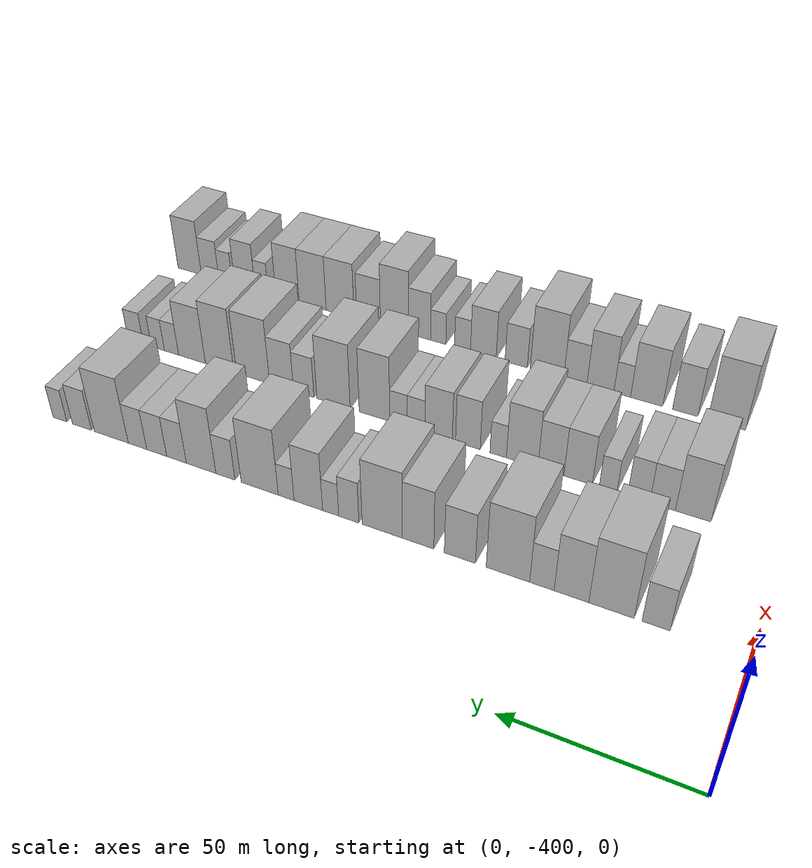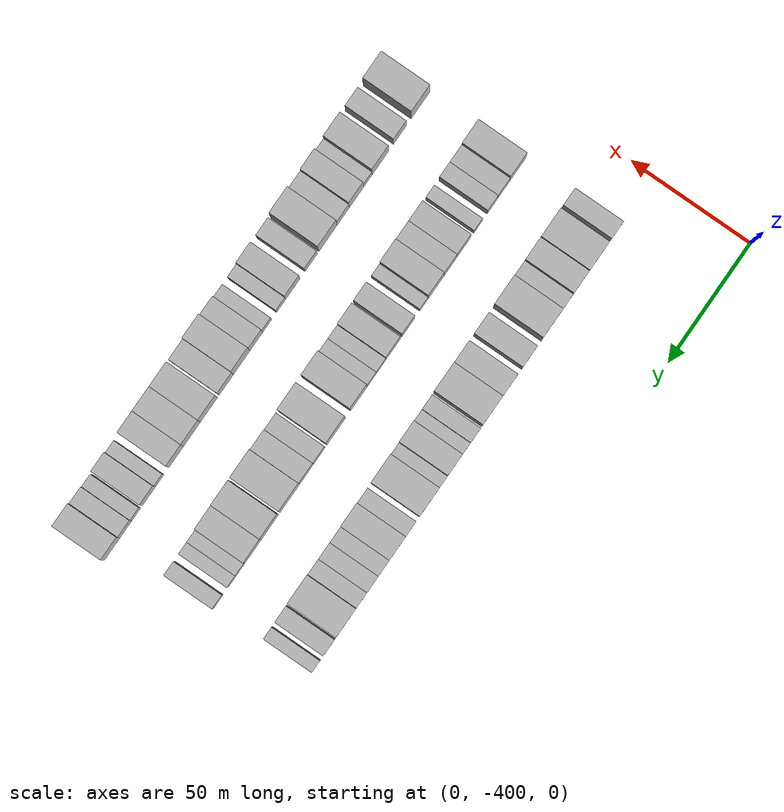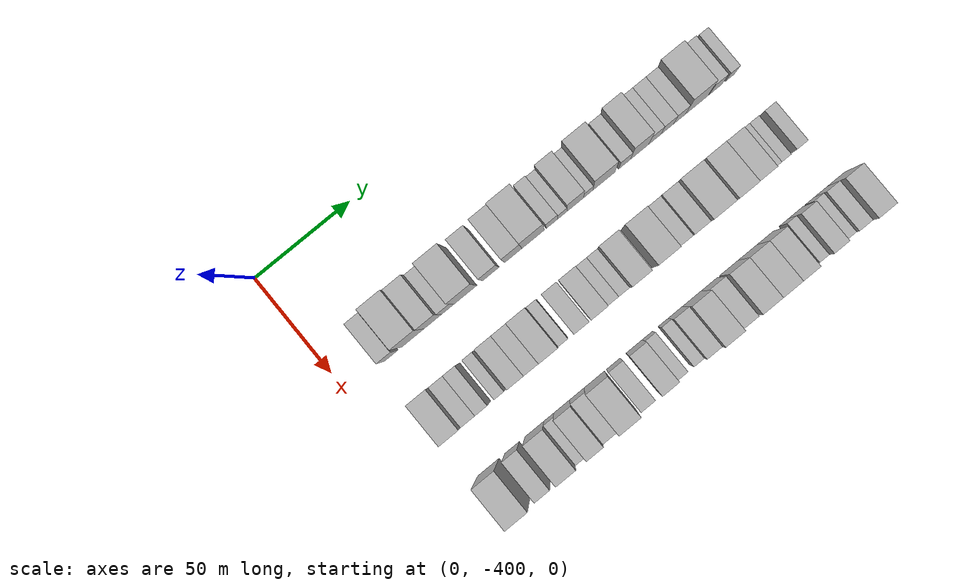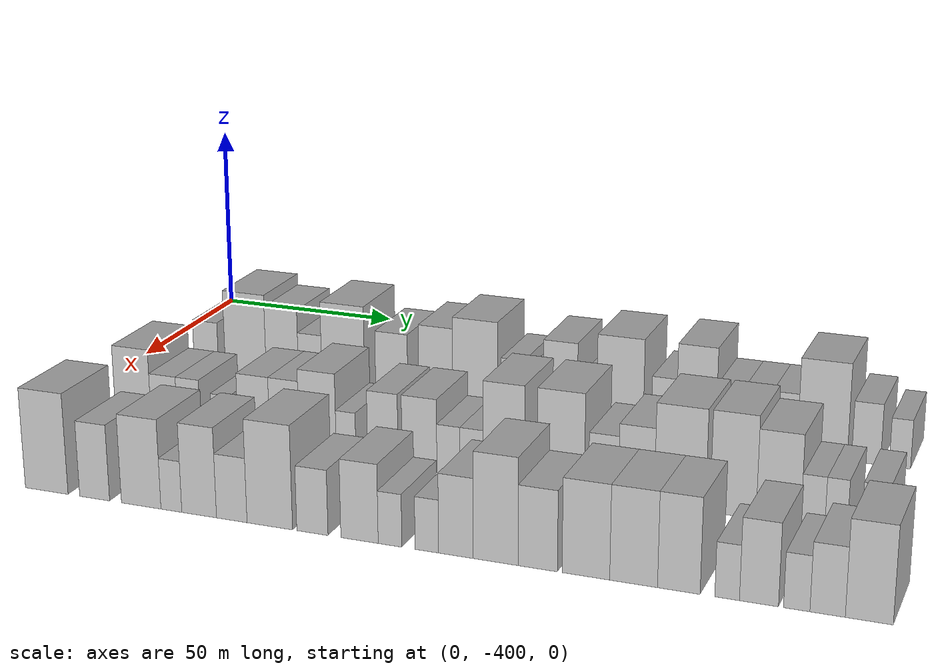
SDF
<sdf version="1.6">
 <world name="default">
  <model name="building_1">
   <static>1</static>
   <pose>50.0000 -376.4474 0 0.000000 0.000000 0.000000</pose>
   <link name="link">
    <pose>0 0 7.50 0 0 0</pose>
    <collision name="collision"><geometry><box><size>20.0000 7.1051 15.0000</size></box></geometry></collision>
    <visual name="visual">
     <cast_shadows>0</cast_shadows>
     <geometry><box><size>20.0000 7.1051 15.0000</size></box></geometry>
     <material>
      <script>
       <uri>model://HANNAS_wall/materials/scripts</uri>
       <uri>model://HANNAS_wall/materials/textures</uri>
       <name>vrc/HANNAS_wall</name>
      </script>
     </material>
    </visual>
   </link>
  </model>
  <model name="building_2">
   <static>1</static>
   <pose>50.0000 -365.0217 0 0.000000 0.000000 0.000000</pose>
   <link name="link">
    <pose>0 0 12.00 0 0 0</pose>
    <collision name="collision"><geometry><box><size>20.0000 11.7464 24.0000</size></box></geometry></collision>
    <visual name="visual">
     <cast_shadows>0</cast_shadows>
     <geometry><box><size>20.0000 11.7464 24.0000</size></box></geometry>
     <material>
      <script>
       <uri>model://HANNAS_wall/materials/scripts</uri>
       <uri>model://HANNAS_wall/materials/textures</uri>
       <name>vrc/HANNAS_wall</name>
      </script>
     </material>
    </visual>
   </link>
  </model>
  <model name="building_3">
   <static>1</static>
   <pose>50.0000 -354.5544 0 0.000000 0.000000 0.000000</pose>
   <link name="link">
    <pose>0 0 10.50 0 0 0</pose>
    <collision name="collision"><geometry><box><size>20.0000 9.1883 21.0000</size></box></geometry></collision>
    <visual name="visual">
     <cast_shadows>0</cast_shadows>
     <geometry><box><size>20.0000 9.1883 21.0000</size></box></geometry>
     <material>
      <script>
       <uri>model://HANNAS_wall/materials/scripts</uri>
       <uri>model://HANNAS_wall/materials/textures</uri>
       <name>vrc/HANNAS_wall</name>
      </script>
     </material>
    </visual>
   </link>
  </model>
  <model name="building_4">
   <static>1</static>
   <pose>50.0000 -346.6746 0 0.000000 0.000000 0.000000</pose>
   <link name="link">
    <pose>0 0 7.50 0 0 0</pose>
    <collision name="collision"><geometry><box><size>20.0000 6.5711 15.0000</size></box></geometry></collision>
    <visual name="visual">
     <cast_shadows>0</cast_shadows>
     <geometry><box><size>20.0000 6.5711 15.0000</size></box></geometry>
     <material>
      <script>
       <uri>model://HANNAS_wall/materials/scripts</uri>
       <uri>model://HANNAS_wall/materials/textures</uri>
       <name>vrc/HANNAS_wall</name>
      </script>
     </material>
    </visual>
   </link>
  </model>
  <model name="building_5">
   <static>1</static>
   <pose>50.0000 -337.4279 0 0.000000 0.000000 0.000000</pose>
   <link name="link">
    <pose>0 0 12.00 0 0 0</pose>
    <collision name="collision"><geometry><box><size>20.0000 11.9223 24.0000</size></box></geometry></collision>
    <visual name="visual">
     <cast_shadows>0</cast_shadows>
     <geometry><box><size>20.0000 11.9223 24.0000</size></box></geometry>
     <material>
      <script>
       <uri>model://HANNAS_wall/materials/scripts</uri>
       <uri>model://HANNAS_wall/materials/textures</uri>
       <name>vrc/HANNAS_wall</name>
      </script>
     </material>
    </visual>
   </link>
  </model>
  <model name="building_6">
   <static>1</static>
   <pose>50.0000 -324.0828 0 0.000000 0.000000 0.000000</pose>
   <link name="link">
    <pose>0 0 9.00 0 0 0</pose>
    <collision name="collision"><geometry><box><size>20.0000 8.7679 18.0000</size></box></geometry></collision>
    <visual name="visual">
     <cast_shadows>0</cast_shadows>
     <geometry><box><size>20.0000 8.7679 18.0000</size></box></geometry>
     <material>
      <script>
       <uri>model://HANNAS_wall/materials/scripts</uri>
       <uri>model://HANNAS_wall/materials/textures</uri>
       <name>vrc/HANNAS_wall</name>
      </script>
     </material>
    </visual>
   </link>
  </model>
  <model name="building_7">
   <static>1</static>
   <pose>50.0000 -312.1704 0 0.000000 0.000000 0.000000</pose>
   <link name="link">
    <pose>0 0 10.50 0 0 0</pose>
    <collision name="collision"><geometry><box><size>20.0000 9.0568 21.0000</size></box></geometry></collision>
    <visual name="visual">
     <cast_shadows>0</cast_shadows>
     <geometry><box><size>20.0000 9.0568 21.0000</size></box></geometry>
     <material>
      <script>
       <uri>model://HANNAS_wall/materials/scripts</uri>
       <uri>model://HANNAS_wall/materials/textures</uri>
       <name>vrc/HANNAS_wall</name>
      </script>
     </material>
    </visual>
   </link>
  </model>
  <model name="building_8">
   <static>1</static>
   <pose>50.0000 -301.7070 0 0.000000 0.000000 0.000000</pose>
   <link name="link">
    <pose>0 0 12.00 0 0 0</pose>
    <collision name="collision"><geometry><box><size>20.0000 11.8700 24.0000</size></box></geometry></collision>
    <visual name="visual">
     <cast_shadows>0</cast_shadows>
     <geometry><box><size>20.0000 11.8700 24.0000</size></box></geometry>
     <material>
      <script>
       <uri>model://HANNAS_wall/materials/scripts</uri>
       <uri>model://HANNAS_wall/materials/textures</uri>
       <name>vrc/HANNAS_wall</name>
      </script>
     </material>
    </visual>
   </link>
  </model>
  <model name="building_9">
   <static>1</static>
   <pose>50.0000 -291.7434 0 0.000000 0.000000 0.000000</pose>
   <link name="link">
    <pose>0 0 7.50 0 0 0</pose>
    <collision name="collision"><geometry><box><size>20.0000 6.0571 15.0000</size></box></geometry></collision>
    <visual name="visual">
     <cast_shadows>0</cast_shadows>
     <geometry><box><size>20.0000 6.0571 15.0000</size></box></geometry>
     <material>
      <script>
       <uri>model://HANNAS_wall/materials/scripts</uri>
       <uri>model://HANNAS_wall/materials/textures</uri>
       <name>vrc/HANNAS_wall</name>
      </script>
     </material>
    </visual>
   </link>
  </model>
  <model name="building_10">
   <static>1</static>
   <pose>50.0000 -286.2814 0 0.000000 0.000000 0.000000</pose>
   <link name="link">
    <pose>0 0 6.00 0 0 0</pose>
    <collision name="collision"><geometry><box><size>20.0000 4.8668 12.0000</size></box></geometry></collision>
    <visual name="visual">
     <cast_shadows>0</cast_shadows>
     <geometry><box><size>20.0000 4.8668 12.0000</size></box></geometry>
     <material>
      <script>
       <uri>model://HANNAS_wall/materials/scripts</uri>
       <uri>model://HANNAS_wall/materials/textures</uri>
       <name>vrc/HANNAS_wall</name>
      </script>
     </material>
    </visual>
   </link>
  </model>
  <model name="building_11">
   <static>1</static>
   <pose>50.0000 -279.4507 0 0.000000 0.000000 0.000000</pose>
   <link name="link">
    <pose>0 0 10.50 0 0 0</pose>
    <collision name="collision"><geometry><box><size>20.0000 8.7948 21.0000</size></box></geometry></collision>
    <visual name="visual">
     <cast_shadows>0</cast_shadows>
     <geometry><box><size>20.0000 8.7948 21.0000</size></box></geometry>
     <material>
      <script>
       <uri>model://HANNAS_wall/materials/scripts</uri>
       <uri>model://HANNAS_wall/materials/textures</uri>
       <name>vrc/HANNAS_wall</name>
      </script>
     </material>
    </visual>
   </link>
  </model>
  <model name="building_12">
   <static>1</static>
   <pose>50.0000 -272.5724 0 0.000000 0.000000 0.000000</pose>
   <link name="link">
    <pose>0 0 6.00 0 0 0</pose>
    <collision name="collision"><geometry><box><size>20.0000 4.9618 12.0000</size></box></geometry></collision>
    <visual name="visual">
     <cast_shadows>0</cast_shadows>
     <geometry><box><size>20.0000 4.9618 12.0000</size></box></geometry>
     <material>
      <script>
       <uri>model://HANNAS_wall/materials/scripts</uri>
       <uri>model://HANNAS_wall/materials/textures</uri>
       <name>vrc/HANNAS_wall</name>
      </script>
     </material>
    </visual>
   </link>
  </model>
  <model name="building_13">
   <static>1</static>
   <pose>50.0000 -264.2122 0 0.000000 0.000000 0.000000</pose>
   <link name="link">
    <pose>0 0 12.00 0 0 0</pose>
    <collision name="collision"><geometry><box><size>20.0000 11.7585 24.0000</size></box></geometry></collision>
    <visual name="visual">
     <cast_shadows>0</cast_shadows>
     <geometry><box><size>20.0000 11.7585 24.0000</size></box></geometry>
     <material>
      <script>
       <uri>model://HANNAS_wall/materials/scripts</uri>
       <uri>model://HANNAS_wall/materials/textures</uri>
       <name>vrc/HANNAS_wall</name>
      </script>
     </material>
    </visual>
   </link>
  </model>
  <model name="building_14">
   <static>1</static>
   <pose>50.0000 -253.2306 0 0.000000 0.000000 0.000000</pose>
   <link name="link">
    <pose>0 0 7.50 0 0 0</pose>
    <collision name="collision"><geometry><box><size>20.0000 6.2049 15.0000</size></box></geometry></collision>
    <visual name="visual">
     <cast_shadows>0</cast_shadows>
     <geometry><box><size>20.0000 6.2049 15.0000</size></box></geometry>
     <material>
      <script>
       <uri>model://HANNAS_wall/materials/scripts</uri>
       <uri>model://HANNAS_wall/materials/textures</uri>
       <name>vrc/HANNAS_wall</name>
      </script>
     </material>
    </visual>
   </link>
  </model>
  <model name="building_15">
   <static>1</static>
   <pose>50.0000 -245.2657 0 0.000000 0.000000 0.000000</pose>
   <link name="link">
    <pose>0 0 12.00 0 0 0</pose>
    <collision name="collision"><geometry><box><size>20.0000 9.7249 24.0000</size></box></geometry></collision>
    <visual name="visual">
     <cast_shadows>0</cast_shadows>
     <geometry><box><size>20.0000 9.7249 24.0000</size></box></geometry>
     <material>
      <script>
       <uri>model://HANNAS_wall/materials/scripts</uri>
       <uri>model://HANNAS_wall/materials/textures</uri>
       <name>vrc/HANNAS_wall</name>
      </script>
     </material>
    </visual>
   </link>
  </model>
  <model name="building_16">
   <static>1</static>
   <pose>50.0000 -237.1206 0 0.000000 0.000000 0.000000</pose>
   <link name="link">
    <pose>0 0 7.50 0 0 0</pose>
    <collision name="collision"><geometry><box><size>20.0000 6.5652 15.0000</size></box></geometry></collision>
    <visual name="visual">
     <cast_shadows>0</cast_shadows>
     <geometry><box><size>20.0000 6.5652 15.0000</size></box></geometry>
     <material>
      <script>
       <uri>model://HANNAS_wall/materials/scripts</uri>
       <uri>model://HANNAS_wall/materials/textures</uri>
       <name>vrc/HANNAS_wall</name>
      </script>
     </material>
    </visual>
   </link>
  </model>
  <model name="building_17">
   <static>1</static>
   <pose>50.0000 -230.4647 0 0.000000 0.000000 0.000000</pose>
   <link name="link">
    <pose>0 0 7.50 0 0 0</pose>
    <collision name="collision"><geometry><box><size>20.0000 6.7467 15.0000</size></box></geometry></collision>
    <visual name="visual">
     <cast_shadows>0</cast_shadows>
     <geometry><box><size>20.0000 6.7467 15.0000</size></box></geometry>
     <material>
      <script>
       <uri>model://HANNAS_wall/materials/scripts</uri>
       <uri>model://HANNAS_wall/materials/textures</uri>
       <name>vrc/HANNAS_wall</name>
      </script>
     </material>
    </visual>
   </link>
  </model>
  <model name="building_18">
   <static>1</static>
   <pose>50.0000 -223.9192 0 0.000000 0.000000 0.000000</pose>
   <link name="link">
    <pose>0 0 7.50 0 0 0</pose>
    <collision name="collision"><geometry><box><size>20.0000 6.3443 15.0000</size></box></geometry></collision>
    <visual name="visual">
     <cast_shadows>0</cast_shadows>
     <geometry><box><size>20.0000 6.3443 15.0000</size></box></geometry>
     <material>
      <script>
       <uri>model://HANNAS_wall/materials/scripts</uri>
       <uri>model://HANNAS_wall/materials/textures</uri>
       <name>vrc/HANNAS_wall</name>
      </script>
     </material>
    </visual>
   </link>
  </model>
  <model name="building_19">
   <static>1</static>
   <pose>50.0000 -214.8182 0 0.000000 0.000000 0.000000</pose>
   <link name="link">
    <pose>0 0 12.00 0 0 0</pose>
    <collision name="collision"><geometry><box><size>20.0000 11.8577 24.0000</size></box></geometry></collision>
    <visual name="visual">
     <cast_shadows>0</cast_shadows>
     <geometry><box><size>20.0000 11.8577 24.0000</size></box></geometry>
     <material>
      <script>
       <uri>model://HANNAS_wall/materials/scripts</uri>
       <uri>model://HANNAS_wall/materials/textures</uri>
       <name>vrc/HANNAS_wall</name>
      </script>
     </material>
    </visual>
   </link>
  </model>
  <model name="building_20">
   <static>1</static>
   <pose>50.0000 -204.5173 0 0.000000 0.000000 0.000000</pose>
   <link name="link">
    <pose>0 0 7.50 0 0 0</pose>
    <collision name="collision"><geometry><box><size>20.0000 6.7441 15.0000</size></box></geometry></collision>
    <visual name="visual">
     <cast_shadows>0</cast_shadows>
     <geometry><box><size>20.0000 6.7441 15.0000</size></box></geometry>
     <material>
      <script>
       <uri>model://HANNAS_wall/materials/scripts</uri>
       <uri>model://HANNAS_wall/materials/textures</uri>
       <name>vrc/HANNAS_wall</name>
      </script>
     </material>
    </visual>
   </link>
  </model>
  <model name="building_21">
   <static>1</static>
   <pose>50.0000 -196.6896 0 0.000000 0.000000 0.000000</pose>
   <link name="link">
    <pose>0 0 6.00 0 0 0</pose>
    <collision name="collision"><geometry><box><size>20.0000 4.9112 12.0000</size></box></geometry></collision>
    <visual name="visual">
     <cast_shadows>0</cast_shadows>
     <geometry><box><size>20.0000 4.9112 12.0000</size></box></geometry>
     <material>
      <script>
       <uri>model://HANNAS_wall/materials/scripts</uri>
       <uri>model://HANNAS_wall/materials/textures</uri>
       <name>vrc/HANNAS_wall</name>
      </script>
     </material>
    </visual>
   </link>
  </model>
  <model name="building_87">
   <static>1</static>
   <pose>90.0000 -375.1114 0 0.000000 0.000000 0.000000</pose>
   <link name="link">
    <pose>0 0 10.50 0 0 0</pose>
    <collision name="collision"><geometry><box><size>20.0000 9.7771 21.0000</size></box></geometry></collision>
    <visual name="visual">
     <cast_shadows>0</cast_shadows>
     <geometry><box><size>20.0000 9.7771 21.0000</size></box></geometry>
     <material>
      <script>
       <uri>model://HANNAS_wall/materials/scripts</uri>
       <uri>model://HANNAS_wall/materials/textures</uri>
       <name>vrc/HANNAS_wall</name>
      </script>
     </material>
    </visual>
   </link>
  </model>
  <model name="building_88">
   <static>1</static>
   <pose>90.0000 -366.6486 0 0.000000 0.000000 0.000000</pose>
   <link name="link">
    <pose>0 0 7.50 0 0 0</pose>
    <collision name="collision"><geometry><box><size>20.0000 7.1486 15.0000</size></box></geometry></collision>
    <visual name="visual">
     <cast_shadows>0</cast_shadows>
     <geometry><box><size>20.0000 7.1486 15.0000</size></box></geometry>
     <material>
      <script>
       <uri>model://HANNAS_wall/materials/scripts</uri>
       <uri>model://HANNAS_wall/materials/textures</uri>
       <name>vrc/HANNAS_wall</name>
      </script>
     </material>
    </visual>
   </link>
  </model>
  <model name="building_89">
   <static>1</static>
   <pose>90.0000 -359.9589 0 0.000000 0.000000 0.000000</pose>
   <link name="link">
    <pose>0 0 7.50 0 0 0</pose>
    <collision name="collision"><geometry><box><size>20.0000 6.2308 15.0000</size></box></geometry></collision>
    <visual name="visual">
     <cast_shadows>0</cast_shadows>
     <geometry><box><size>20.0000 6.2308 15.0000</size></box></geometry>
     <material>
      <script>
       <uri>model://HANNAS_wall/materials/scripts</uri>
       <uri>model://HANNAS_wall/materials/textures</uri>
       <name>vrc/HANNAS_wall</name>
      </script>
     </material>
    </visual>
   </link>
  </model>
  <model name="building_90">
   <static>1</static>
   <pose>90.0000 -351.3036 0 0.000000 0.000000 0.000000</pose>
   <link name="link">
    <pose>0 0 6.00 0 0 0</pose>
    <collision name="collision"><geometry><box><size>20.0000 5.0797 12.0000</size></box></geometry></collision>
    <visual name="visual">
     <cast_shadows>0</cast_shadows>
     <geometry><box><size>20.0000 5.0797 12.0000</size></box></geometry>
     <material>
      <script>
       <uri>model://HANNAS_wall/materials/scripts</uri>
       <uri>model://HANNAS_wall/materials/textures</uri>
       <name>vrc/HANNAS_wall</name>
      </script>
     </material>
    </visual>
   </link>
  </model>
  <model name="building_91">
   <static>1</static>
   <pose>90.0000 -342.6138 0 0.000000 0.000000 0.000000</pose>
   <link name="link">
    <pose>0 0 9.00 0 0 0</pose>
    <collision name="collision"><geometry><box><size>20.0000 8.2998 18.0000</size></box></geometry></collision>
    <visual name="visual">
     <cast_shadows>0</cast_shadows>
     <geometry><box><size>20.0000 8.2998 18.0000</size></box></geometry>
     <material>
      <script>
       <uri>model://HANNAS_wall/materials/scripts</uri>
       <uri>model://HANNAS_wall/materials/textures</uri>
       <name>vrc/HANNAS_wall</name>
      </script>
     </material>
    </visual>
   </link>
  </model>
  <model name="building_92">
   <static>1</static>
   <pose>90.0000 -334.6281 0 0.000000 0.000000 0.000000</pose>
   <link name="link">
    <pose>0 0 9.00 0 0 0</pose>
    <collision name="collision"><geometry><box><size>20.0000 7.6716 18.0000</size></box></geometry></collision>
    <visual name="visual">
     <cast_shadows>0</cast_shadows>
     <geometry><box><size>20.0000 7.6716 18.0000</size></box></geometry>
     <material>
      <script>
       <uri>model://HANNAS_wall/materials/scripts</uri>
       <uri>model://HANNAS_wall/materials/textures</uri>
       <name>vrc/HANNAS_wall</name>
      </script>
     </material>
    </visual>
   </link>
  </model>
  <model name="building_93">
   <static>1</static>
   <pose>90.0000 -326.0307 0 0.000000 0.000000 0.000000</pose>
   <link name="link">
    <pose>0 0 10.50 0 0 0</pose>
    <collision name="collision"><geometry><box><size>20.0000 9.5232 21.0000</size></box></geometry></collision>
    <visual name="visual">
     <cast_shadows>0</cast_shadows>
     <geometry><box><size>20.0000 9.5232 21.0000</size></box></geometry>
     <material>
      <script>
       <uri>model://HANNAS_wall/materials/scripts</uri>
       <uri>model://HANNAS_wall/materials/textures</uri>
       <name>vrc/HANNAS_wall</name>
      </script>
     </material>
    </visual>
   </link>
  </model>
  <model name="building_94">
   <static>1</static>
   <pose>90.0000 -318.7704 0 0.000000 0.000000 0.000000</pose>
   <link name="link">
    <pose>0 0 6.00 0 0 0</pose>
    <collision name="collision"><geometry><box><size>20.0000 4.9974 12.0000</size></box></geometry></collision>
    <visual name="visual">
     <cast_shadows>0</cast_shadows>
     <geometry><box><size>20.0000 4.9974 12.0000</size></box></geometry>
     <material>
      <script>
       <uri>model://HANNAS_wall/materials/scripts</uri>
       <uri>model://HANNAS_wall/materials/textures</uri>
       <name>vrc/HANNAS_wall</name>
      </script>
     </material>
    </visual>
   </link>
  </model>
  <model name="building_95">
   <static>1</static>
   <pose>90.0000 -309.4488 0 0.000000 0.000000 0.000000</pose>
   <link name="link">
    <pose>0 0 9.00 0 0 0</pose>
    <collision name="collision"><geometry><box><size>20.0000 7.6457 18.0000</size></box></geometry></collision>
    <visual name="visual">
     <cast_shadows>0</cast_shadows>
     <geometry><box><size>20.0000 7.6457 18.0000</size></box></geometry>
     <material>
      <script>
       <uri>model://HANNAS_wall/materials/scripts</uri>
       <uri>model://HANNAS_wall/materials/textures</uri>
       <name>vrc/HANNAS_wall</name>
      </script>
     </material>
    </visual>
   </link>
  </model>
  <model name="building_96">
   <static>1</static>
   <pose>90.0000 -300.3069 0 0.000000 0.000000 0.000000</pose>
   <link name="link">
    <pose>0 0 9.00 0 0 0</pose>
    <collision name="collision"><geometry><box><size>20.0000 8.6380 18.0000</size></box></geometry></collision>
    <visual name="visual">
     <cast_shadows>0</cast_shadows>
     <geometry><box><size>20.0000 8.6380 18.0000</size></box></geometry>
     <material>
      <script>
       <uri>model://HANNAS_wall/materials/scripts</uri>
       <uri>model://HANNAS_wall/materials/textures</uri>
       <name>vrc/HANNAS_wall</name>
      </script>
     </material>
    </visual>
   </link>
  </model>
  <model name="building_97">
   <static>1</static>
   <pose>90.0000 -293.1363 0 0.000000 0.000000 0.000000</pose>
   <link name="link">
    <pose>0 0 6.00 0 0 0</pose>
    <collision name="collision"><geometry><box><size>20.0000 5.7032 12.0000</size></box></geometry></collision>
    <visual name="visual">
     <cast_shadows>0</cast_shadows>
     <geometry><box><size>20.0000 5.7032 12.0000</size></box></geometry>
     <material>
      <script>
       <uri>model://HANNAS_wall/materials/scripts</uri>
       <uri>model://HANNAS_wall/materials/textures</uri>
       <name>vrc/HANNAS_wall</name>
      </script>
     </material>
    </visual>
   </link>
  </model>
  <model name="building_98">
   <static>1</static>
   <pose>90.0000 -287.4939 0 0.000000 0.000000 0.000000</pose>
   <link name="link">
    <pose>0 0 6.00 0 0 0</pose>
    <collision name="collision"><geometry><box><size>20.0000 5.5816 12.0000</size></box></geometry></collision>
    <visual name="visual">
     <cast_shadows>0</cast_shadows>
     <geometry><box><size>20.0000 5.5816 12.0000</size></box></geometry>
     <material>
      <script>
       <uri>model://HANNAS_wall/materials/scripts</uri>
       <uri>model://HANNAS_wall/materials/textures</uri>
       <name>vrc/HANNAS_wall</name>
      </script>
     </material>
    </visual>
   </link>
  </model>
  <model name="building_99">
   <static>1</static>
   <pose>90.0000 -279.7035 0 0.000000 0.000000 0.000000</pose>
   <link name="link">
    <pose>0 0 12.00 0 0 0</pose>
    <collision name="collision"><geometry><box><size>20.0000 9.9992 24.0000</size></box></geometry></collision>
    <visual name="visual">
     <cast_shadows>0</cast_shadows>
     <geometry><box><size>20.0000 9.9992 24.0000</size></box></geometry>
     <material>
      <script>
       <uri>model://HANNAS_wall/materials/scripts</uri>
       <uri>model://HANNAS_wall/materials/textures</uri>
       <name>vrc/HANNAS_wall</name>
      </script>
     </material>
    </visual>
   </link>
  </model>
  <model name="building_100">
   <static>1</static>
   <pose>90.0000 -266.1162 0 0.000000 0.000000 0.000000</pose>
   <link name="link">
    <pose>0 0 12.00 0 0 0</pose>
    <collision name="collision"><geometry><box><size>20.0000 11.1755 24.0000</size></box></geometry></collision>
    <visual name="visual">
     <cast_shadows>0</cast_shadows>
     <geometry><box><size>20.0000 11.1755 24.0000</size></box></geometry>
     <material>
      <script>
       <uri>model://HANNAS_wall/materials/scripts</uri>
       <uri>model://HANNAS_wall/materials/textures</uri>
       <name>vrc/HANNAS_wall</name>
      </script>
     </material>
    </visual>
   </link>
  </model>
  <model name="building_101">
   <static>1</static>
   <pose>90.0000 -256.0460 0 0.000000 0.000000 0.000000</pose>
   <link name="link">
    <pose>0 0 7.50 0 0 0</pose>
    <collision name="collision"><geometry><box><size>20.0000 6.9647 15.0000</size></box></geometry></collision>
    <visual name="visual">
     <cast_shadows>0</cast_shadows>
     <geometry><box><size>20.0000 6.9647 15.0000</size></box></geometry>
     <material>
      <script>
       <uri>model://HANNAS_wall/materials/scripts</uri>
       <uri>model://HANNAS_wall/materials/textures</uri>
       <name>vrc/HANNAS_wall</name>
      </script>
     </material>
    </visual>
   </link>
  </model>
  <model name="building_102">
   <static>1</static>
   <pose>90.0000 -248.4318 0 0.000000 0.000000 0.000000</pose>
   <link name="link">
    <pose>0 0 9.00 0 0 0</pose>
    <collision name="collision"><geometry><box><size>20.0000 8.2637 18.0000</size></box></geometry></collision>
    <visual name="visual">
     <cast_shadows>0</cast_shadows>
     <geometry><box><size>20.0000 8.2637 18.0000</size></box></geometry>
     <material>
      <script>
       <uri>model://HANNAS_wall/materials/scripts</uri>
       <uri>model://HANNAS_wall/materials/textures</uri>
       <name>vrc/HANNAS_wall</name>
      </script>
     </material>
    </visual>
   </link>
  </model>
  <model name="building_103">
   <static>1</static>
   <pose>90.0000 -238.4825 0 0.000000 0.000000 0.000000</pose>
   <link name="link">
    <pose>0 0 12.00 0 0 0</pose>
    <collision name="collision"><geometry><box><size>20.0000 11.6350 24.0000</size></box></geometry></collision>
    <visual name="visual">
     <cast_shadows>0</cast_shadows>
     <geometry><box><size>20.0000 11.6350 24.0000</size></box></geometry>
     <material>
      <script>
       <uri>model://HANNAS_wall/materials/scripts</uri>
       <uri>model://HANNAS_wall/materials/textures</uri>
       <name>vrc/HANNAS_wall</name>
      </script>
     </material>
    </visual>
   </link>
  </model>
  <model name="building_104">
   <static>1</static>
   <pose>90.0000 -226.5242 0 0.000000 0.000000 0.000000</pose>
   <link name="link">
    <pose>0 0 12.00 0 0 0</pose>
    <collision name="collision"><geometry><box><size>20.0000 10.2817 24.0000</size></box></geometry></collision>
    <visual name="visual">
     <cast_shadows>0</cast_shadows>
     <geometry><box><size>20.0000 10.2817 24.0000</size></box></geometry>
     <material>
      <script>
       <uri>model://HANNAS_wall/materials/scripts</uri>
       <uri>model://HANNAS_wall/materials/textures</uri>
       <name>vrc/HANNAS_wall</name>
      </script>
     </material>
    </visual>
   </link>
  </model>
  <model name="building_105">
   <static>1</static>
   <pose>90.0000 -216.4870 0 0.000000 0.000000 0.000000</pose>
   <link name="link">
    <pose>0 0 10.50 0 0 0</pose>
    <collision name="collision"><geometry><box><size>20.0000 9.7926 21.0000</size></box></geometry></collision>
    <visual name="visual">
     <cast_shadows>0</cast_shadows>
     <geometry><box><size>20.0000 9.7926 21.0000</size></box></geometry>
     <material>
      <script>
       <uri>model://HANNAS_wall/materials/scripts</uri>
       <uri>model://HANNAS_wall/materials/textures</uri>
       <name>vrc/HANNAS_wall</name>
      </script>
     </material>
    </visual>
   </link>
  </model>
  <model name="building_106">
   <static>1</static>
   <pose>90.0000 -208.9618 0 0.000000 0.000000 0.000000</pose>
   <link name="link">
    <pose>0 0 6.00 0 0 0</pose>
    <collision name="collision"><geometry><box><size>20.0000 5.2579 12.0000</size></box></geometry></collision>
    <visual name="visual">
     <cast_shadows>0</cast_shadows>
     <geometry><box><size>20.0000 5.2579 12.0000</size></box></geometry>
     <material>
      <script>
       <uri>model://HANNAS_wall/materials/scripts</uri>
       <uri>model://HANNAS_wall/materials/textures</uri>
       <name>vrc/HANNAS_wall</name>
      </script>
     </material>
    </visual>
   </link>
  </model>
  <model name="building_107">
   <static>1</static>
   <pose>90.0000 -203.9033 0 0.000000 0.000000 0.000000</pose>
   <link name="link">
    <pose>0 0 6.00 0 0 0</pose>
    <collision name="collision"><geometry><box><size>20.0000 4.8590 12.0000</size></box></geometry></collision>
    <visual name="visual">
     <cast_shadows>0</cast_shadows>
     <geometry><box><size>20.0000 4.8590 12.0000</size></box></geometry>
     <material>
      <script>
       <uri>model://HANNAS_wall/materials/scripts</uri>
       <uri>model://HANNAS_wall/materials/textures</uri>
       <name>vrc/HANNAS_wall</name>
      </script>
     </material>
    </visual>
   </link>
  </model>
  <model name="building_108">
   <static>1</static>
   <pose>90.0000 -195.5802 0 0.000000 0.000000 0.000000</pose>
   <link name="link">
    <pose>0 0 6.00 0 0 0</pose>
    <collision name="collision"><geometry><box><size>20.0000 5.7873 12.0000</size></box></geometry></collision>
    <visual name="visual">
     <cast_shadows>0</cast_shadows>
     <geometry><box><size>20.0000 5.7873 12.0000</size></box></geometry>
     <material>
      <script>
       <uri>model://HANNAS_wall/materials/scripts</uri>
       <uri>model://HANNAS_wall/materials/textures</uri>
       <name>vrc/HANNAS_wall</name>
      </script>
     </material>
    </visual>
   </link>
  </model>
  <model name="building_176">
   <static>1</static>
   <pose>130.0000 -374.4695 0 0.000000 0.000000 0.000000</pose>
   <link name="link">
    <pose>0 0 12.00 0 0 0</pose>
    <collision name="collision"><geometry><box><size>20.0000 11.0609 24.0000</size></box></geometry></collision>
    <visual name="visual">
     <cast_shadows>0</cast_shadows>
     <geometry><box><size>20.0000 11.0609 24.0000</size></box></geometry>
     <material>
      <script>
       <uri>model://HANNAS_wall/materials/scripts</uri>
       <uri>model://HANNAS_wall/materials/textures</uri>
       <name>vrc/HANNAS_wall</name>
      </script>
     </material>
    </visual>
   </link>
  </model>
  <model name="building_177">
   <static>1</static>
   <pose>130.0000 -362.1261 0 0.000000 0.000000 0.000000</pose>
   <link name="link">
    <pose>0 0 9.00 0 0 0</pose>
    <collision name="collision"><geometry><box><size>20.0000 7.6259 18.0000</size></box></geometry></collision>
    <visual name="visual">
     <cast_shadows>0</cast_shadows>
     <geometry><box><size>20.0000 7.6259 18.0000</size></box></geometry>
     <material>
      <script>
       <uri>model://HANNAS_wall/materials/scripts</uri>
       <uri>model://HANNAS_wall/materials/textures</uri>
       <name>vrc/HANNAS_wall</name>
      </script>
     </material>
    </visual>
   </link>
  </model>
  <model name="building_178">
   <static>1</static>
   <pose>130.0000 -350.3652 0 0.000000 0.000000 0.000000</pose>
   <link name="link">
    <pose>0 0 10.50 0 0 0</pose>
    <collision name="collision"><geometry><box><size>20.0000 9.8959 21.0000</size></box></geometry></collision>
    <visual name="visual">
     <cast_shadows>0</cast_shadows>
     <geometry><box><size>20.0000 9.8959 21.0000</size></box></geometry>
     <material>
      <script>
       <uri>model://HANNAS_wall/materials/scripts</uri>
       <uri>model://HANNAS_wall/materials/textures</uri>
       <name>vrc/HANNAS_wall</name>
      </script>
     </material>
    </visual>
   </link>
  </model>
  <model name="building_179">
   <static>1</static>
   <pose>130.0000 -342.8293 0 0.000000 0.000000 0.000000</pose>
   <link name="link">
    <pose>0 0 6.00 0 0 0</pose>
    <collision name="collision"><geometry><box><size>20.0000 5.1759 12.0000</size></box></geometry></collision>
    <visual name="visual">
     <cast_shadows>0</cast_shadows>
     <geometry><box><size>20.0000 5.1759 12.0000</size></box></geometry>
     <material>
      <script>
       <uri>model://HANNAS_wall/materials/scripts</uri>
       <uri>model://HANNAS_wall/materials/textures</uri>
       <name>vrc/HANNAS_wall</name>
      </script>
     </material>
    </visual>
   </link>
  </model>
  <model name="building_180">
   <static>1</static>
   <pose>130.0000 -335.9852 0 0.000000 0.000000 0.000000</pose>
   <link name="link">
    <pose>0 0 10.50 0 0 0</pose>
    <collision name="collision"><geometry><box><size>20.0000 8.5124 21.0000</size></box></geometry></collision>
    <visual name="visual">
     <cast_shadows>0</cast_shadows>
     <geometry><box><size>20.0000 8.5124 21.0000</size></box></geometry>
     <material>
      <script>
       <uri>model://HANNAS_wall/materials/scripts</uri>
       <uri>model://HANNAS_wall/materials/textures</uri>
       <name>vrc/HANNAS_wall</name>
      </script>
     </material>
    </visual>
   </link>
  </model>
  <model name="building_181">
   <static>1</static>
   <pose>130.0000 -328.0305 0 0.000000 0.000000 0.000000</pose>
   <link name="link">
    <pose>0 0 7.50 0 0 0</pose>
    <collision name="collision"><geometry><box><size>20.0000 7.3969 15.0000</size></box></geometry></collision>
    <visual name="visual">
     <cast_shadows>0</cast_shadows>
     <geometry><box><size>20.0000 7.3969 15.0000</size></box></geometry>
     <material>
      <script>
       <uri>model://HANNAS_wall/materials/scripts</uri>
       <uri>model://HANNAS_wall/materials/textures</uri>
       <name>vrc/HANNAS_wall</name>
      </script>
     </material>
    </visual>
   </link>
  </model>
  <model name="building_182">
   <static>1</static>
   <pose>130.0000 -318.8872 0 0.000000 0.000000 0.000000</pose>
   <link name="link">
    <pose>0 0 12.00 0 0 0</pose>
    <collision name="collision"><geometry><box><size>20.0000 10.8897 24.0000</size></box></geometry></collision>
    <visual name="visual">
     <cast_shadows>0</cast_shadows>
     <geometry><box><size>20.0000 10.8897 24.0000</size></box></geometry>
     <material>
      <script>
       <uri>model://HANNAS_wall/materials/scripts</uri>
       <uri>model://HANNAS_wall/materials/textures</uri>
       <name>vrc/HANNAS_wall</name>
      </script>
     </material>
    </visual>
   </link>
  </model>
  <model name="building_183">
   <static>1</static>
   <pose>130.0000 -308.7722 0 0.000000 0.000000 0.000000</pose>
   <link name="link">
    <pose>0 0 7.50 0 0 0</pose>
    <collision name="collision"><geometry><box><size>20.0000 7.3403 15.0000</size></box></geometry></collision>
    <visual name="visual">
     <cast_shadows>0</cast_shadows>
     <geometry><box><size>20.0000 7.3403 15.0000</size></box></geometry>
     <material>
      <script>
       <uri>model://HANNAS_wall/materials/scripts</uri>
       <uri>model://HANNAS_wall/materials/textures</uri>
       <name>vrc/HANNAS_wall</name>
      </script>
     </material>
    </visual>
   </link>
  </model>
  <model name="building_184">
   <static>1</static>
   <pose>130.0000 -297.7869 0 0.000000 0.000000 0.000000</pose>
   <link name="link">
    <pose>0 0 9.00 0 0 0</pose>
    <collision name="collision"><geometry><box><size>20.0000 8.6303 18.0000</size></box></geometry></collision>
    <visual name="visual">
     <cast_shadows>0</cast_shadows>
     <geometry><box><size>20.0000 8.6303 18.0000</size></box></geometry>
     <material>
      <script>
       <uri>model://HANNAS_wall/materials/scripts</uri>
       <uri>model://HANNAS_wall/materials/textures</uri>
       <name>vrc/HANNAS_wall</name>
      </script>
     </material>
    </visual>
   </link>
  </model>
  <model name="building_185">
   <static>1</static>
   <pose>130.0000 -290.7664 0 0.000000 0.000000 0.000000</pose>
   <link name="link">
    <pose>0 0 6.00 0 0 0</pose>
    <collision name="collision"><geometry><box><size>20.0000 5.4108 12.0000</size></box></geometry></collision>
    <visual name="visual">
     <cast_shadows>0</cast_shadows>
     <geometry><box><size>20.0000 5.4108 12.0000</size></box></geometry>
     <material>
      <script>
       <uri>model://HANNAS_wall/materials/scripts</uri>
       <uri>model://HANNAS_wall/materials/textures</uri>
       <name>vrc/HANNAS_wall</name>
      </script>
     </material>
    </visual>
   </link>
  </model>
  <model name="building_186">
   <static>1</static>
   <pose>130.0000 -282.4095 0 0.000000 0.000000 0.000000</pose>
   <link name="link">
    <pose>0 0 6.00 0 0 0</pose>
    <collision name="collision"><geometry><box><size>20.0000 5.3030 12.0000</size></box></geometry></collision>
    <visual name="visual">
     <cast_shadows>0</cast_shadows>
     <geometry><box><size>20.0000 5.3030 12.0000</size></box></geometry>
     <material>
      <script>
       <uri>model://HANNAS_wall/materials/scripts</uri>
       <uri>model://HANNAS_wall/materials/textures</uri>
       <name>vrc/HANNAS_wall</name>
      </script>
     </material>
    </visual>
   </link>
  </model>
  <model name="building_187">
   <static>1</static>
   <pose>130.0000 -275.9001 0 0.000000 0.000000 0.000000</pose>
   <link name="link">
    <pose>0 0 9.00 0 0 0</pose>
    <collision name="collision"><geometry><box><size>20.0000 7.7157 18.0000</size></box></geometry></collision>
    <visual name="visual">
     <cast_shadows>0</cast_shadows>
     <geometry><box><size>20.0000 7.7157 18.0000</size></box></geometry>
     <material>
      <script>
       <uri>model://HANNAS_wall/materials/scripts</uri>
       <uri>model://HANNAS_wall/materials/textures</uri>
       <name>vrc/HANNAS_wall</name>
      </script>
     </material>
    </visual>
   </link>
  </model>
  <model name="building_188">
   <static>1</static>
   <pose>130.0000 -267.0885 0 0.000000 0.000000 0.000000</pose>
   <link name="link">
    <pose>0 0 12.00 0 0 0</pose>
    <collision name="collision"><geometry><box><size>20.0000 9.9076 24.0000</size></box></geometry></collision>
    <visual name="visual">
     <cast_shadows>0</cast_shadows>
     <geometry><box><size>20.0000 9.9076 24.0000</size></box></geometry>
     <material>
      <script>
       <uri>model://HANNAS_wall/materials/scripts</uri>
       <uri>model://HANNAS_wall/materials/textures</uri>
       <name>vrc/HANNAS_wall</name>
      </script>
     </material>
    </visual>
   </link>
  </model>
  <model name="building_189">
   <static>1</static>
   <pose>130.0000 -257.8667 0 0.000000 0.000000 0.000000</pose>
   <link name="link">
    <pose>0 0 9.00 0 0 0</pose>
    <collision name="collision"><geometry><box><size>20.0000 8.5361 18.0000</size></box></geometry></collision>
    <visual name="visual">
     <cast_shadows>0</cast_shadows>
     <geometry><box><size>20.0000 8.5361 18.0000</size></box></geometry>
     <material>
      <script>
       <uri>model://HANNAS_wall/materials/scripts</uri>
       <uri>model://HANNAS_wall/materials/textures</uri>
       <name>vrc/HANNAS_wall</name>
      </script>
     </material>
    </visual>
   </link>
  </model>
  <model name="building_190">
   <static>1</static>
   <pose>130.0000 -247.5101 0 0.000000 0.000000 0.000000</pose>
   <link name="link">
    <pose>0 0 10.50 0 0 0</pose>
    <collision name="collision"><geometry><box><size>20.0000 10.1771 21.0000</size></box></geometry></collision>
    <visual name="visual">
     <cast_shadows>0</cast_shadows>
     <geometry><box><size>20.0000 10.1771 21.0000</size></box></geometry>
     <material>
      <script>
       <uri>model://HANNAS_wall/materials/scripts</uri>
       <uri>model://HANNAS_wall/materials/textures</uri>
       <name>vrc/HANNAS_wall</name>
      </script>
     </material>
    </visual>
   </link>
  </model>
  <model name="building_191">
   <static>1</static>
   <pose>130.0000 -237.4046 0 0.000000 0.000000 0.000000</pose>
   <link name="link">
    <pose>0 0 10.50 0 0 0</pose>
    <collision name="collision"><geometry><box><size>20.0000 10.0339 21.0000</size></box></geometry></collision>
    <visual name="visual">
     <cast_shadows>0</cast_shadows>
     <geometry><box><size>20.0000 10.0339 21.0000</size></box></geometry>
     <material>
      <script>
       <uri>model://HANNAS_wall/materials/scripts</uri>
       <uri>model://HANNAS_wall/materials/textures</uri>
       <name>vrc/HANNAS_wall</name>
      </script>
     </material>
    </visual>
   </link>
  </model>
  <model name="building_192">
   <static>1</static>
   <pose>130.0000 -227.9774 0 0.000000 0.000000 0.000000</pose>
   <link name="link">
    <pose>0 0 10.50 0 0 0</pose>
    <collision name="collision"><geometry><box><size>20.0000 8.8206 21.0000</size></box></geometry></collision>
    <visual name="visual">
     <cast_shadows>0</cast_shadows>
     <geometry><box><size>20.0000 8.8206 21.0000</size></box></geometry>
     <material>
      <script>
       <uri>model://HANNAS_wall/materials/scripts</uri>
       <uri>model://HANNAS_wall/materials/textures</uri>
       <name>vrc/HANNAS_wall</name>
      </script>
     </material>
    </visual>
   </link>
  </model>
  <model name="building_193">
   <static>1</static>
   <pose>130.0000 -218.0642 0 0.000000 0.000000 0.000000</pose>
   <link name="link">
    <pose>0 0 6.00 0 0 0</pose>
    <collision name="collision"><geometry><box><size>20.0000 5.0059 12.0000</size></box></geometry></collision>
    <visual name="visual">
     <cast_shadows>0</cast_shadows>
     <geometry><box><size>20.0000 5.0059 12.0000</size></box></geometry>
     <material>
      <script>
       <uri>model://HANNAS_wall/materials/scripts</uri>
       <uri>model://HANNAS_wall/materials/textures</uri>
       <name>vrc/HANNAS_wall</name>
      </script>
     </material>
    </visual>
   </link>
  </model>
  <model name="building_194">
   <static>1</static>
   <pose>130.0000 -211.6295 0 0.000000 0.000000 0.000000</pose>
   <link name="link">
    <pose>0 0 9.00 0 0 0</pose>
    <collision name="collision"><geometry><box><size>20.0000 7.8634 18.0000</size></box></geometry></collision>
    <visual name="visual">
     <cast_shadows>0</cast_shadows>
     <geometry><box><size>20.0000 7.8634 18.0000</size></box></geometry>
     <material>
      <script>
       <uri>model://HANNAS_wall/materials/scripts</uri>
       <uri>model://HANNAS_wall/materials/textures</uri>
       <name>vrc/HANNAS_wall</name>
      </script>
     </material>
    </visual>
   </link>
  </model>
  <model name="building_195">
   <static>1</static>
   <pose>130.0000 -204.0775 0 0.000000 0.000000 0.000000</pose>
   <link name="link">
    <pose>0 0 6.00 0 0 0</pose>
    <collision name="collision"><geometry><box><size>20.0000 5.2405 12.0000</size></box></geometry></collision>
    <visual name="visual">
     <cast_shadows>0</cast_shadows>
     <geometry><box><size>20.0000 5.2405 12.0000</size></box></geometry>
     <material>
      <script>
       <uri>model://HANNAS_wall/materials/scripts</uri>
       <uri>model://HANNAS_wall/materials/textures</uri>
       <name>vrc/HANNAS_wall</name>
      </script>
     </material>
    </visual>
   </link>
  </model>
  <model name="building_196">
   <static>1</static>
   <pose>130.0000 -197.9786 0 0.000000 0.000000 0.000000</pose>
   <link name="link">
    <pose>0 0 7.50 0 0 0</pose>
    <collision name="collision"><geometry><box><size>20.0000 6.9574 15.0000</size></box></geometry></collision>
    <visual name="visual">
     <cast_shadows>0</cast_shadows>
     <geometry><box><size>20.0000 6.9574 15.0000</size></box></geometry>
     <material>
      <script>
       <uri>model://HANNAS_wall/materials/scripts</uri>
       <uri>model://HANNAS_wall/materials/textures</uri>
       <name>vrc/HANNAS_wall</name>
      </script>
     </material>
    </visual>
   </link>
  </model>
  <model name="building_197">
   <static>1</static>
   <pose>130.0000 -189.8400 0 0.000000 0.000000 0.000000</pose>
   <link name="link">
    <pose>0 0 10.50 0 0 0</pose>
    <collision name="collision"><geometry><box><size>20.0000 9.3198 21.0000</size></box></geometry></collision>
    <visual name="visual">
     <cast_shadows>0</cast_shadows>
     <geometry><box><size>20.0000 9.3198 21.0000</size></box></geometry>
     <material>
      <script>
       <uri>model://HANNAS_wall/materials/scripts</uri>
       <uri>model://HANNAS_wall/materials/textures</uri>
       <name>vrc/HANNAS_wall</name>
      </script>
     </material>
    </visual>
   </link>
  </model>
 </world>
</sdf>
